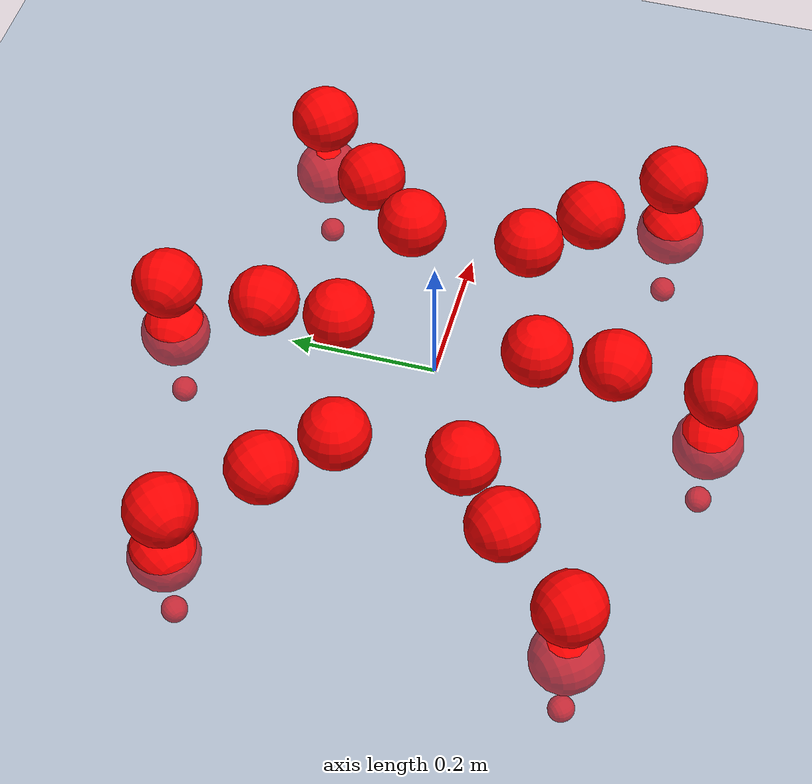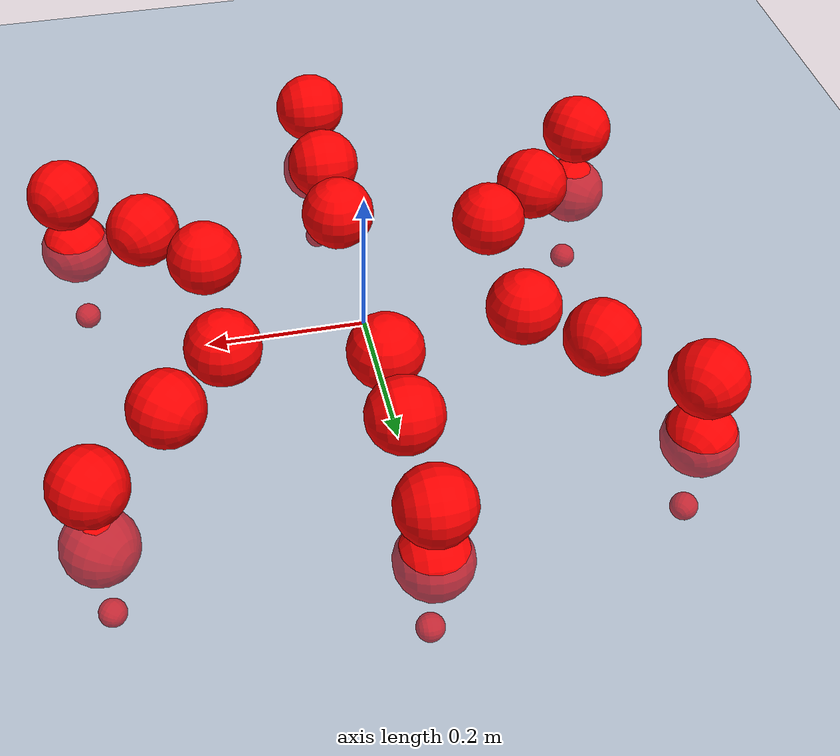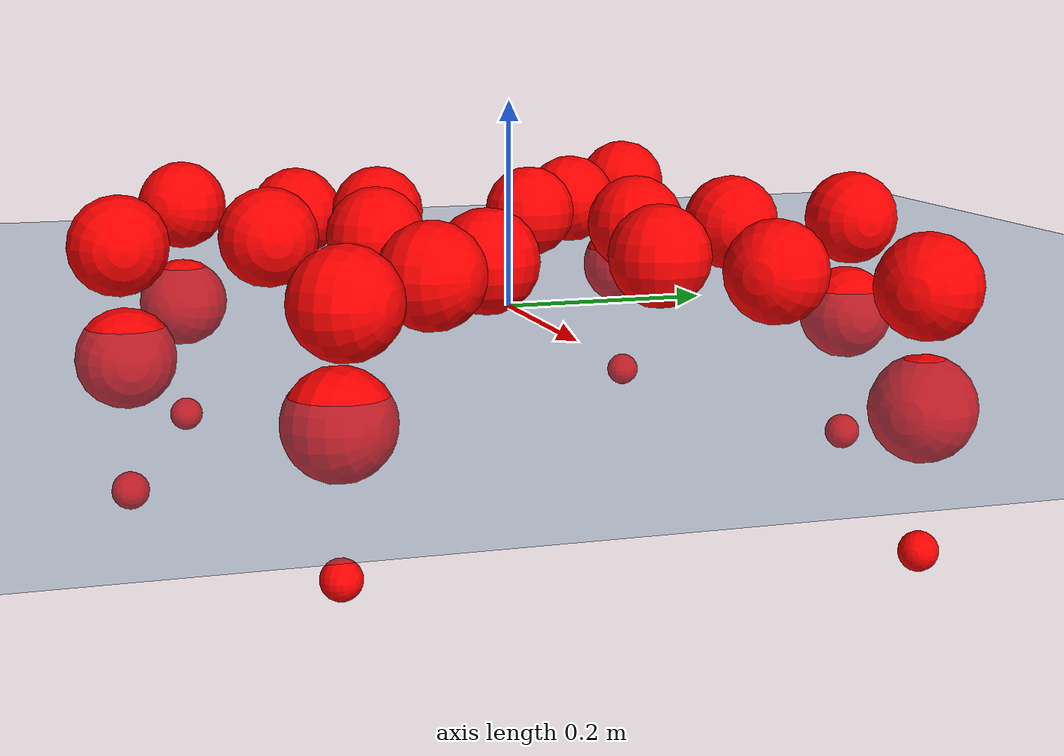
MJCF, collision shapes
<mujoco model="Golem">
  <compiler angle="radian" assetdir="assets" balanceinertia="true" inertiafromgeom="false"/>

  <option timestep="0.005" density="1.2" viscosity="2e-05"/>

  <size nkey="1"/>

  <visual>
    <quality shadowsize="8192"/>
    <map shadowclip="0.5"/>
  </visual>

  <default>
    <default class="/">
      <joint armature="0.01" damping="0.01" frictionloss="0.01"/>
      <geom contype="0" conaffinity="0" group="1" solref="-1000 -80"/>
      <site size="0.01 0.005 0.005" group="5"/>
      <general forcelimited="true" biastype="affine" gainprm="25" biasprm="0 -25 -0.5"/>
      <default class="visual">
        <geom type="mesh" group="2"/>
      </default>
      <default class="collision">
        <geom group="3"/>
      </default>
      <default class="foot">
        <geom size="0.01 0 0" condim="6" group="4" priority="1" solimp="0.015 1 0.01"/>
      </default>
      <default class="reward_collision_sphere">
        <geom group="5" rgba="1 0 0 1"/>
      </default>
    </default>
  </default>

  <asset>
    <texture type="skybox" colorspace="auto" name="//unnamed_texture_0" builtin="gradient" rgb1="0.95 0.95 0.95" rgb2="0.95 0.95 0.95" width="100" height="600"/>
    <texture type="2d" colorspace="auto" name="texplane" builtin="checker" rgb1="0.345 0.575 0.748" rgb2="0.345 0.575 0.748" markrgb="1 1 1" width="512" height="512"/>
    <material name="MatPlane" class="/" texture="texplane" texuniform="true" texrepeat="2 2" specular="0.9"/>
    <mesh name="body" class="/" file="body.stl" scale="0.001 0.001 0.001"/>
    <mesh name="coxa" class="/" file="coxa.stl" scale="0.001 0.001 0.001"/>
    <mesh name="femur" class="/" file="femur.stl" scale="0.001 0.001 0.001"/>
    <mesh name="tibia" class="/" file="tibia.stl" scale="0.001 0.001 0.001"/>
    <mesh name="tarsus" class="/" file="tarsus.stl" scale="0.001 0.001 0.001"/>
  </asset>

  <worldbody>
    <geom name="floor" class="/" size="100 100 0.125" type="plane" group="0" material="MatPlane"/>
    <light name="toplight_shadow" class="/" pos="0 0 5" dir="0.0990148 0.0990148 -0.990148" type="directional" ambient="0.04 0.04 0.04" diffuse="0.55 0.55 0.55" specular="0.12 0.12 0.12"/>
    <light name="toplight_fill" class="/" pos="0 0 5" dir="0.0990148 0.0990148 -0.990148" type="directional" castshadow="false" ambient="0.04 0.04 0.04" diffuse="0.3 0.3 0.3" specular="0.08 0.08 0.08"/>
    <body name="trunk" pos="0.00189411 -0.000749156 0.000269635" quat="0.999999 -0.000202271 0.000808859 0.000825386">
      <inertial pos="-0.0021114 -0.00190634 0.00476379" quat="0.999642 0.00266924 0.00544083 -0.0260474" mass="6.04974" diaginertia="0.0223102 0.034524 0.0157556"/>
      <joint name="//unnamed_joint_0" type="free"/>
      <geom name="//unnamed_geom_1" class="/" pos="0 0 0.0704415" quat="1 0 0 0" type="mesh" rgba="0.9 0.9 0.9 1" mesh="body"/>
      <site name="imu" class="/" pos="0.154518 -0.00683915 0.109746" size="0.011866"/>
      <camera name="track" class="/" pos="0 -2.55708 0" quat="0.707107 0.707107 0 0" mode="trackcom"/>
      <camera name="ego_camera" class="/" pos="0.153479 0 0.110065" quat="-0.5 -0.5 0.5 0.5"/>
      <body name="coxa_RR" pos="-0.210565 -0.109386 0.0736532" quat="0.382511 0.000293449 8.56035e-05 -0.923951">
        <inertial pos="-0.000871313 -0.000722568 -0.00042316" quat="0.999975 0.00164376 0.00682453 -0.00121134" mass="0.342495" diaginertia="0.0224787 0.0347542 0.0166095"/>
        <joint name="coxa_joint_RR" class="/" pos="0 0 0" axis="0.00563253 0.000129047 -0.999984" range="-3.14714 3.03322" armature="0.0117314" damping="0" frictionloss="0.0123116"/>
        <geom name="//unnamed_geom_2" class="/" type="mesh" rgba="0.2 0.2 0.2 1" mesh="coxa"/>
        <geom name="//unnamed_geom_3" class="reward_collision_sphere" size="0.0474639" pos="-0.0354182 0 0"/>
        <body name="femur_RR" pos="0.0701106 -0.00726732 -0.00713243" quat="0.498909 -0.499851 0.500742 0.500496">
          <inertial pos="-0.000985712 -0.00518092 -0.00658334" quat="0.999937 0.00915733 -0.00357149 0.00544333" mass="0.334354" diaginertia="0.0225466 0.0352554 0.015352"/>
          <joint name="femur_joint_RR" class="/" pos="0 0 0" axis="0.0109764 0.00111627 -0.999939" range="-3.09199 3.14567" armature="0.0127899" damping="0.00263882" frictionloss="0.00787344"/>
          <geom name="//unnamed_geom_4" class="/" type="mesh" rgba="0.9 0.9 0.9 1" mesh="femur"/>
          <geom name="//unnamed_geom_5" class="reward_collision_sphere" size="0.0474639"/>
          <body name="tibia_RR" pos="-0.000808652 -0.143843 0.00694401" quat="0.00065783 0.999999 -0.000469672 -0.000767193">
            <inertial pos="-0.000636326 0.00597425 -0.00263158" quat="0.99994 0.00326719 -0.0104804 4.34181e-05" mass="0.332929" diaginertia="0.0232538 0.034158 0.0159666"/>
            <joint name="tibia_joint_RR" class="/" pos="0 0 0" axis="-0.000938179 0.00043592 0.999999" stiffness="0.00686968" range="-3.13771 3.14661" armature="0.0132074" damping="0" frictionloss="0.012667"/>
            <geom name="//unnamed_geom_6" class="/" type="mesh" rgba="0.2 0.2 0.2 1" mesh="tibia"/>
            <geom name="//unnamed_geom_7" class="reward_collision_sphere" size="0.0474639"/>
            <body name="tarsus_RR" pos="0.108128 0.00195119 0.000332233" quat="0.999999 -0.000109437 0.00103285 0.000644468">
              <inertial pos="0.0722896 0.00359223 -0.00133518" quat="0.502429 0.499997 0.499696 0.497867" mass="0.330736" diaginertia="0.0220132 0.0340988 0.0169986"/>
              <joint name="tarsus_joint_RR" class="/" pos="0 0 0" axis="0.00513782 0.00915612 0.999945" range="-3.01025 3.00001" armature="0.0130496" damping="0" frictionloss="0.012445"/>
              <geom name="//unnamed_geom_8" class="/" type="mesh" rgba="0.9 0.9 0.9 1" mesh="tarsus"/>
              <geom name="foot_1" class="foot" size="0.0111388" pos="0.132228 0 0" quat="0 -0.707107 0 0.707107"/>
              <geom name="//unnamed_geom_10" class="reward_collision_sphere" size="0.0474639"/>
              <geom name="//unnamed_geom_11" class="reward_collision_sphere" size="0.017799" pos="0.126915 0 0"/>
              <site name="foot_1" class="foot" pos="0.132228 0 0" quat="0 -0.707107 0 0.707107" size="0.011866"/>
            </body>
          </body>
        </body>
      </body>
      <body name="coxa_RM" pos="0.00510793 -0.170061 0.0750566" quat="0.707126 -7.77803e-05 -8.13076e-05 -0.707088">
        <inertial pos="0.00225273 0.000920904 0.00194068" quat="0.999539 0.0138974 0.00621553 0.0262733" mass="0.328766" diaginertia="0.0224332 0.0340723 0.0152646"/>
        <joint name="coxa_joint_RM" class="/" pos="0 0 0" axis="0.00890986 0.00384927 -0.999953" range="-3.18233 3.18487" armature="0.0116307" damping="0.0243034" frictionloss="0.0104865"/>
        <geom name="//unnamed_geom_12" class="/" type="mesh" rgba="0.2 0.2 0.2 1" mesh="coxa"/>
        <geom name="//unnamed_geom_13" class="reward_collision_sphere" size="0.0474639" pos="-0.0354182 0 0"/>
        <body name="femur_RM" pos="0.0682588 0.000658316 0.00340765" quat="0.49934 -0.498875 0.499674 0.502104">
          <inertial pos="0.00545961 0.000620313 0.00676021" quat="0.999936 -0.00839519 -0.00658476 -0.00368785" mass="0.318959" diaginertia="0.0223602 0.0342497 0.0162562"/>
          <joint name="femur_joint_RM" class="/" pos="0 0 0" axis="0.00144828 0.00032856 -0.999999" range="-3.0998 3.03598" armature="0.0124801" damping="0.0258483" frictionloss="0.0145848"/>
          <geom name="//unnamed_geom_14" class="/" type="mesh" rgba="0.9 0.9 0.9 1" mesh="femur"/>
          <geom name="//unnamed_geom_15" class="reward_collision_sphere" size="0.0474639"/>
          <body name="tibia_RM" pos="0.00265962 -0.138842 -0.00664961" quat="-1.13878e-05 1 -3.28681e-06 -3.49399e-05">
            <inertial pos="0.0019261 0.00204545 -0.00188677" quat="0.999999 0.00132459 3.20391e-05 0.000953655" mass="0.346322" diaginertia="0.0226299 0.0341994 0.016813"/>
            <joint name="tibia_joint_RM" class="/" pos="0 0 0" axis="-0.00290201 0.0260002 0.999658" range="-3.11982 3.22089" armature="0.0104277" damping="0.00837621" frictionloss="0.0120681"/>
            <geom name="//unnamed_geom_16" class="/" type="mesh" rgba="0.2 0.2 0.2 1" mesh="tibia"/>
            <geom name="//unnamed_geom_17" class="reward_collision_sphere" size="0.0474639"/>
            <body name="tarsus_RM" pos="0.106174 -0.00449134 0.00519463" quat="0.999999 -0.00101533 -0.000345214 -0.000637404">
              <inertial pos="0.0688355 0.000822874 -0.00182023" quat="0.498095 0.489563 0.505235 0.506919" mass="0.338144" diaginertia="0.0229377 0.0348902 0.0177177"/>
              <joint name="tarsus_joint_RM" class="/" pos="0 0 0" axis="-0.00326873 0.00375155 0.999988" stiffness="0.00196544" range="-3.05391 3.25487" armature="0.0123306" damping="0" frictionloss="0.0106854"/>
              <geom name="//unnamed_geom_18" class="/" type="mesh" rgba="0.9 0.9 0.9 1" mesh="tarsus"/>
              <geom name="foot_2" class="foot" size="0.0124573" pos="0.132228 0 0" quat="0 -0.707107 0 0.707107"/>
              <geom name="//unnamed_geom_20" class="reward_collision_sphere" size="0.0474639"/>
              <geom name="//unnamed_geom_21" class="reward_collision_sphere" size="0.017799" pos="0.126915 0 0"/>
              <site name="foot_2" class="foot" pos="0.132228 0 0" quat="0 -0.707107 0 0.707107" size="0.011866"/>
            </body>
          </body>
        </body>
      </body>
      <body name="coxa_RF" pos="0.213406 -0.105856 0.0746891" quat="0.923964 -5.97122e-05 0.000268319 -0.382478">
        <inertial pos="0.00122034 0.00751872 0.00217927" quat="0.999964 -0.00396459 -0.00725023 -0.00202967" mass="0.323097" diaginertia="0.0223036 0.0347842 0.0164361"/>
        <joint name="coxa_joint_RF" class="/" pos="0 0 0" axis="0.00128446 -0.00671773 -0.999977" range="-3.13458 3.09516" armature="0.0105995" damping="0.0195445" frictionloss="0.0119082"/>
        <geom name="//unnamed_geom_22" class="/" type="mesh" rgba="0.2 0.2 0.2 1" mesh="coxa"/>
        <geom name="//unnamed_geom_23" class="reward_collision_sphere" size="0.0474639" pos="-0.0354182 0 0"/>
        <body name="femur_RF" pos="0.0643082 0.000323671 0.000688032" quat="0.500309 -0.499473 0.499665 0.500551">
          <inertial pos="0.00266609 0.000111586 -0.00318748" quat="0.999958 -0.002246 -0.00836548 -0.00300529" mass="0.342815" diaginertia="0.0227203 0.0367418 0.0157669"/>
          <joint name="femur_joint_RF" class="/" pos="0 0 0" axis="-0.00317515 -0.000922981 -0.999995" range="-3.24363 3.17998" armature="0.0115337" damping="0.0106528" frictionloss="0.0133813"/>
          <geom name="//unnamed_geom_24" class="/" type="mesh" rgba="0.9 0.9 0.9 1" mesh="femur"/>
          <geom name="//unnamed_geom_25" class="reward_collision_sphere" size="0.0474639"/>
          <body name="tibia_RF" pos="0.00237708 -0.137746 0.000235805" quat="1.56896e-05 1 -0.000229394 -3.76714e-05">
            <inertial pos="-0.00193651 0.000168215 -0.000109619" quat="0.999536 0.0154755 0.0262241 -0.000359689" mass="0.31376" diaginertia="0.0235367 0.0341698 0.0159539"/>
            <joint name="tibia_joint_RF" class="/" pos="0 0 0" axis="-0.0110401 0.0102486 0.999887" range="-3.14192 3.13744" armature="0.0132407" damping="0" frictionloss="0.010671"/>
            <geom name="//unnamed_geom_26" class="/" type="mesh" rgba="0.2 0.2 0.2 1" mesh="tibia"/>
            <geom name="//unnamed_geom_27" class="reward_collision_sphere" size="0.0474639"/>
            <body name="tarsus_RF" pos="0.097247 -0.000305304 0.00756805" quat="1 0.000318467 -2.48406e-05 0.000102764">
              <inertial pos="0.0717395 0.00417737 0.00136892" quat="0.500247 0.499581 0.50531 0.494806" mass="0.357874" diaginertia="0.0227107 0.0355489 0.0160674"/>
              <joint name="tarsus_joint_RF" class="/" pos="0 0 0" axis="0.00816325 -0.0157949 0.999842" range="-3.08377 3.13482" armature="0.0121484" damping="0" frictionloss="0.0108665"/>
              <geom name="//unnamed_geom_28" class="/" type="mesh" rgba="0.9 0.9 0.9 1" mesh="tarsus"/>
              <geom name="foot_3" class="foot" size="0.0127675" pos="0.132228 0 0" quat="0 -0.707107 0 0.707107"/>
              <geom name="//unnamed_geom_30" class="reward_collision_sphere" size="0.0474639"/>
              <geom name="//unnamed_geom_31" class="reward_collision_sphere" size="0.017799" pos="0.126915 0 0"/>
              <site name="foot_3" class="foot" pos="0.132228 0 0" quat="0 -0.707107 0 0.707107" size="0.011866"/>
            </body>
          </body>
        </body>
      </body>
      <body name="coxa_LR" pos="-0.210984 0.107949 0.0681087" quat="0.382667 -5.89694e-06 -1.8122e-05 0.923886">
        <inertial pos="-0.00176383 -0.00196901 -0.00391551" quat="0.999942 0.00834631 0.00620108 0.00270191" mass="0.331794" diaginertia="0.0230904 0.0338822 0.0175628"/>
        <joint name="coxa_joint_LR" class="/" pos="0 0 0" axis="0.00202002 -0.0164097 -0.999863" stiffness="0.0120578" range="-3.1403 3.16546" armature="0.011391" damping="0.0409234" frictionloss="0.0151553"/>
        <geom name="//unnamed_geom_32" class="/" type="mesh" rgba="0.2 0.2 0.2 1" mesh="coxa"/>
        <geom name="//unnamed_geom_33" class="reward_collision_sphere" size="0.0474639" pos="-0.0354182 0 0"/>
        <body name="femur_LR" pos="0.0696945 0.00207029 0.00266028" quat="0.500307 -0.500649 0.500049 0.498993">
          <inertial pos="-0.0046319 -0.000609497 -0.00241937" quat="0.999982 0.000426192 -0.00208085 -0.00562077" mass="0.361898" diaginertia="0.0222782 0.0336508 0.0156056"/>
          <joint name="femur_joint_LR" class="/" pos="0 0 0" axis="0.00811639 -0.00872732 0.999929" stiffness="0.00414285" range="-3.00883 3.24158" armature="0.01504" damping="0.0200113" frictionloss="0.0122093"/>
          <geom name="//unnamed_geom_34" class="/" type="mesh" rgba="0.9 0.9 0.9 1" mesh="femur"/>
          <geom name="//unnamed_geom_35" class="reward_collision_sphere" size="0.0474639"/>
          <body name="tibia_LR" pos="-0.0050786 -0.137537 -0.0010002" quat="-4.07431e-05 1 0.000101249 -0.00013161">
            <inertial pos="-0.000381353 0.00288386 0.00136594" quat="0.999994 0.00156285 0.00219942 0.0020154" mass="0.317021" diaginertia="0.0232314 0.0321095 0.0162214"/>
            <joint name="tibia_joint_LR" class="/" pos="0 0 0" axis="-0.0128708 -0.0171884 -0.999769" stiffness="0.00456543" range="-3.08904 3.2161" armature="0.0112038" damping="0" frictionloss="0.011877"/>
            <geom name="//unnamed_geom_36" class="/" type="mesh" rgba="0.2 0.2 0.2 1" mesh="tibia"/>
            <geom name="//unnamed_geom_37" class="reward_collision_sphere" size="0.0474639"/>
            <body name="tarsus_LR" pos="0.0972716 0.00451839 0.00169755" quat="0.999997 0.00108477 0.00209467 -0.00116888">
              <inertial pos="0.0746378 0.00348452 -0.00198911" quat="0.499989 0.499966 0.500013 0.500032" mass="0.331947" diaginertia="0.0223034 0.0352061 0.0155661"/>
              <joint name="tarsus_joint_LR" class="/" pos="0 0 0" axis="0.000183476 -0.00029639 -1" stiffness="0.00891605" range="-3.16234 3.17315" armature="0.012245" damping="0.0367293" frictionloss="0.00916878"/>
              <geom name="//unnamed_geom_38" class="/" type="mesh" rgba="0.9 0.9 0.9 1" mesh="tarsus"/>
              <geom name="foot_4" class="foot" size="0.0128117" pos="0.132228 0 0" quat="0.707107 0 -0.707107 0"/>
              <geom name="//unnamed_geom_40" class="reward_collision_sphere" size="0.0474639"/>
              <geom name="//unnamed_geom_41" class="reward_collision_sphere" size="0.017799" pos="0.126915 0 0"/>
              <site name="foot_4" class="foot" pos="0.132228 0 0" quat="0.707107 0 -0.707107 0" size="0.011866"/>
            </body>
          </body>
        </body>
      </body>
      <body name="coxa_LM" pos="-0.00130224 0.167849 0.0762851" quat="0.707096 -6.90486e-06 -3.52297e-05 0.707118">
        <inertial pos="-0.00426776 -0.000360261 0.00163917" quat="0.999982 0.00428072 -0.00362444 -0.00229042" mass="0.352702" diaginertia="0.0220135 0.0359987 0.0165872"/>
        <joint name="coxa_joint_LM" class="/" pos="0 0 0" axis="-0.000170149 -0.0116489 -0.999932" range="-3.0929 3.14124" armature="0.0123706" damping="0.00821787" frictionloss="0.0125309"/>
        <geom name="//unnamed_geom_42" class="/" type="mesh" rgba="0.2 0.2 0.2 1" mesh="coxa"/>
        <geom name="//unnamed_geom_43" class="reward_collision_sphere" size="0.0474639" pos="-0.0354182 0 0"/>
        <body name="femur_LM" pos="0.0674884 -6.80208e-05 -0.0031366" quat="0.5 -0.5 0.5 0.5">
          <inertial pos="-0.00155581 -0.00106599 0.00044026" quat="0.999972 0.0065133 -0.00150211 0.00345396" mass="0.320851" diaginertia="0.024369 0.032463 0.0149455"/>
          <joint name="femur_joint_LM" class="/" pos="0 0 0" axis="0.0282254 0.00537466 0.999587" stiffness="0.0125509" range="-3.24721 3.13422" armature="0.0103637" damping="0.0448989" frictionloss="0.0119935"/>
          <geom name="//unnamed_geom_44" class="/" type="mesh" rgba="0.9 0.9 0.9 1" mesh="femur"/>
          <geom name="//unnamed_geom_45" class="reward_collision_sphere" size="0.0474639"/>
          <body name="tibia_LM" pos="0.000710384 -0.135508 0.00322907" quat="2.66172e-05 1 -0.000574917 0.00013628">
            <inertial pos="0.00539538 0.00042295 -3.10204e-05" quat="0.999973 0.0017163 0.00690964 -0.00206501" mass="0.351549" diaginertia="0.0236811 0.0355533 0.0163566"/>
            <joint name="tibia_joint_LM" class="/" pos="0 0 0" axis="3.53343e-05 0.000731428 -1" range="-3.10283 3.13395" armature="0.0131272" damping="0" frictionloss="0.016215"/>
            <geom name="//unnamed_geom_46" class="/" type="mesh" rgba="0.2 0.2 0.2 1" mesh="tibia"/>
            <geom name="//unnamed_geom_47" class="reward_collision_sphere" size="0.0474639"/>
            <body name="tarsus_LM" pos="0.0984027 -0.0027147 -0.00164999" quat="1 0.000160956 -0.000759504 -0.000335527">
              <inertial pos="0.0740487 0.00109002 0.00139668" quat="0.493939 0.509875 0.487124 0.508687" mass="0.339016" diaginertia="0.023761 0.0341317 0.0166607"/>
              <joint name="tarsus_joint_LM" class="/" pos="0 0 0" axis="0.00849522 -0.0116089 -0.999897" range="-3.19506 3.14175" armature="0.0127556" damping="0" frictionloss="0.013143"/>
              <geom name="//unnamed_geom_48" class="/" type="mesh" rgba="0.9 0.9 0.9 1" mesh="tarsus"/>
              <geom name="foot_5" class="foot" size="0.00858572" pos="0.132228 0 0" quat="0.707107 0 -0.707107 0"/>
              <geom name="//unnamed_geom_50" class="reward_collision_sphere" size="0.0474639"/>
              <geom name="//unnamed_geom_51" class="reward_collision_sphere" size="0.017799" pos="0.126915 0 0"/>
              <site name="foot_5" class="foot" pos="0.132228 0 0" quat="0.707107 0 -0.707107 0" size="0.011866"/>
            </body>
          </body>
        </body>
      </body>
      <body name="coxa_LF" pos="0.211051 0.108293 0.0717572" quat="0.923766 -0.000215032 -9.3244e-05 0.382956">
        <inertial pos="0.000260056 0.00646006 0.00100946" quat="0.999743 -0.00210513 0.0225295 0.00108517" mass="0.311964" diaginertia="0.0206236 0.0303561 0.0143319"/>
        <joint name="coxa_joint_LF" class="/" pos="0 0 0" axis="-0.00523399 0.00399846 -0.999978" stiffness="0.0117826" range="-3.18902 3.12807" armature="0.0117328" damping="0" frictionloss="0.0140207"/>
        <geom name="//unnamed_geom_52" class="/" type="mesh" rgba="0.2 0.2 0.2 1" mesh="coxa"/>
        <geom name="//unnamed_geom_53" class="reward_collision_sphere" size="0.0474639" pos="-0.0354182 0 0"/>
        <body name="femur_LF" pos="0.0749877 0.00207571 -0.0067943" quat="0.500367 -0.500073 0.49935 0.500209">
          <inertial pos="-0.000439842 -0.00157246 0.00435216" quat="0.999947 -0.00686589 -0.00717965 -0.00263106" mass="0.327252" diaginertia="0.023028 0.0340794 0.0165261"/>
          <joint name="femur_joint_LF" class="/" pos="0 0 0" axis="4.84728e-05 -0.00976281 0.999952" stiffness="0.0384629" range="-3.18177 3.14079" armature="0.0109543" damping="0.0246893" frictionloss="0.0117955"/>
          <geom name="//unnamed_geom_54" class="/" type="mesh" rgba="0.9 0.9 0.9 1" mesh="femur"/>
          <geom name="//unnamed_geom_55" class="reward_collision_sphere" size="0.0474639"/>
          <body name="tibia_LF" pos="0.00310044 -0.137013 0.000170034" quat="-0.000451066 1 -0.000363295 0.000104827">
            <inertial pos="-0.00534911 -0.00535403 -0.0068873" quat="0.999977 0.00483495 -0.00374621 -0.00308752" mass="0.339666" diaginertia="0.0237878 0.0340057 0.0149931"/>
            <joint name="tibia_joint_LF" class="/" pos="0 0 0" axis="-0.00268714 0.00164994 -0.999995" range="-3.17823 3.24557" armature="0.0105416" damping="0.0143752" frictionloss="0.0127355"/>
            <geom name="//unnamed_geom_56" class="/" type="mesh" rgba="0.2 0.2 0.2 1" mesh="tibia"/>
            <geom name="//unnamed_geom_57" class="reward_collision_sphere" size="0.0474639"/>
            <body name="tarsus_LF" pos="0.106025 -0.0016782 0.000808477" quat="1 0.000131673 -0.000191693 0.000163917">
              <inertial pos="0.0726274 -0.00120514 -0.00529227" quat="0.504091 0.492503 0.512581 0.490504" mass="0.341445" diaginertia="0.021929 0.034373 0.0149858"/>
              <joint name="tarsus_joint_LF" class="/" pos="0 0 0" axis="0.00179746 0.00213856 -0.999996" range="-3.06314 3.2526" armature="0.0114637" damping="0.0261018" frictionloss="0.0114576"/>
              <geom name="//unnamed_geom_58" class="/" type="mesh" rgba="0.9 0.9 0.9 1" mesh="tarsus"/>
              <geom name="foot_6" class="foot" size="0.0111169" pos="0.132228 0 0" quat="0.707107 0 -0.707107 0"/>
              <geom name="//unnamed_geom_60" class="reward_collision_sphere" size="0.0474639"/>
              <geom name="//unnamed_geom_61" class="reward_collision_sphere" size="0.017799" pos="0.126915 0 0"/>
              <site name="foot_6" class="foot" pos="0.132228 0 0" quat="0.707107 0 -0.707107 0" size="0.011866"/>
            </body>
          </body>
        </body>
      </body>
    </body>
  </worldbody>

  <contact>
    <pair class="/" geom1="floor" geom2="foot_1" name="//unnamed_contact_0"/>
    <pair class="/" geom1="floor" geom2="foot_2" name="//unnamed_contact_1"/>
    <pair class="/" geom1="floor" geom2="foot_3" name="//unnamed_contact_2"/>
    <pair class="/" geom1="floor" geom2="foot_4" name="//unnamed_contact_3"/>
    <pair class="/" geom1="floor" geom2="foot_5" name="//unnamed_contact_4"/>
    <pair class="/" geom1="floor" geom2="foot_6" name="//unnamed_contact_5"/>
  </contact>

  <actuator>
    <general name="coxa_joint_RR" class="/" joint="coxa_joint_RR" forcerange="-7.96885 7.96885" gainprm="24.515" biasprm="0 -24.515 -0.580733"/>
    <general name="femur_joint_RR" class="/" joint="femur_joint_RR" forcerange="-8.74961 8.74961" gainprm="24.515" biasprm="0 -24.515 -0.580733"/>
    <general name="tibia_joint_RR" class="/" joint="tibia_joint_RR" forcerange="-8.71212 8.71212" gainprm="24.515" biasprm="0 -24.515 -0.580733"/>
    <general name="tarsus_joint_RR" class="/" joint="tarsus_joint_RR" forcerange="-9.33732 9.33732" gainprm="24.515" biasprm="0 -24.515 -0.580733"/>
    <general name="coxa_joint_RM" class="/" joint="coxa_joint_RM" forcerange="-8.0039 8.0039" gainprm="24.515" biasprm="0 -24.515 -0.580733"/>
    <general name="femur_joint_RM" class="/" joint="femur_joint_RM" forcerange="-8.75768 8.75768" gainprm="24.515" biasprm="0 -24.515 -0.580733"/>
    <general name="tibia_joint_RM" class="/" joint="tibia_joint_RM" forcerange="-8.87852 8.87852" gainprm="24.515" biasprm="0 -24.515 -0.580733"/>
    <general name="tarsus_joint_RM" class="/" joint="tarsus_joint_RM" forcerange="-9.55334 9.55334" gainprm="24.515" biasprm="0 -24.515 -0.580733"/>
    <general name="coxa_joint_RF" class="/" joint="coxa_joint_RF" forcerange="-8.0421 8.0421" gainprm="24.515" biasprm="0 -24.515 -0.580733"/>
    <general name="femur_joint_RF" class="/" joint="femur_joint_RF" forcerange="-8.56355 8.56355" gainprm="24.515" biasprm="0 -24.515 -0.580733"/>
    <general name="tibia_joint_RF" class="/" joint="tibia_joint_RF" forcerange="-8.59241 8.59241" gainprm="24.515" biasprm="0 -24.515 -0.580733"/>
    <general name="tarsus_joint_RF" class="/" joint="tarsus_joint_RF" forcerange="-8.01595 8.01595" gainprm="24.515" biasprm="0 -24.515 -0.580733"/>
    <general name="coxa_joint_LR" class="/" joint="coxa_joint_LR" forcerange="-8.25606 8.25606" gainprm="24.515" biasprm="0 -24.515 -0.580733"/>
    <general name="femur_joint_LR" class="/" joint="femur_joint_LR" forcerange="-9.95262 9.95262" gainprm="24.515" biasprm="0 -24.515 -0.580733"/>
    <general name="tibia_joint_LR" class="/" joint="tibia_joint_LR" forcerange="-9.43106 9.43106" gainprm="24.515" biasprm="0 -24.515 -0.580733"/>
    <general name="tarsus_joint_LR" class="/" joint="tarsus_joint_LR" forcerange="-8.72094 8.72094" gainprm="24.515" biasprm="0 -24.515 -0.580733"/>
    <general name="coxa_joint_LM" class="/" joint="coxa_joint_LM" forcerange="-8.48465 8.48465" gainprm="24.515" biasprm="0 -24.515 -0.580733"/>
    <general name="femur_joint_LM" class="/" joint="femur_joint_LM" forcerange="-8.64522 8.64522" gainprm="24.515" biasprm="0 -24.515 -0.580733"/>
    <general name="tibia_joint_LM" class="/" joint="tibia_joint_LM" forcerange="-8.68094 8.68094" gainprm="24.515" biasprm="0 -24.515 -0.580733"/>
    <general name="tarsus_joint_LM" class="/" joint="tarsus_joint_LM" forcerange="-8.37615 8.37615" gainprm="24.515" biasprm="0 -24.515 -0.580733"/>
    <general name="coxa_joint_LF" class="/" joint="coxa_joint_LF" forcerange="-8.1432 8.1432" gainprm="24.515" biasprm="0 -24.515 -0.580733"/>
    <general name="femur_joint_LF" class="/" joint="femur_joint_LF" forcerange="-7.88055 7.88055" gainprm="24.515" biasprm="0 -24.515 -0.580733"/>
    <general name="tibia_joint_LF" class="/" joint="tibia_joint_LF" forcerange="-8.59099 8.59099" gainprm="24.515" biasprm="0 -24.515 -0.580733"/>
    <general name="tarsus_joint_LF" class="/" joint="tarsus_joint_LF" forcerange="-11.0004 11.0004" gainprm="24.515" biasprm="0 -24.515 -0.580733"/>
  </actuator>

  <sensor>
    <gyro site="imu" name="imu_angular_velocity"/>
    <velocimeter site="imu" name="imu_linear_velocity"/>
    <framelinvel objtype="site" objname="foot_1" name="foot_1_global_linear_velocity"/>
    <framelinvel objtype="site" objname="foot_2" name="foot_2_global_linear_velocity"/>
    <framelinvel objtype="site" objname="foot_3" name="foot_3_global_linear_velocity"/>
    <framelinvel objtype="site" objname="foot_4" name="foot_4_global_linear_velocity"/>
    <framelinvel objtype="site" objname="foot_5" name="foot_5_global_linear_velocity"/>
    <framelinvel objtype="site" objname="foot_6" name="foot_6_global_linear_velocity"/>
  </sensor>

  <keyframe>
    <key name="home" qpos="0 0 0.1457 1 0 0 0 0 0 0 0 0 0 0 0 0 0 0 0 0 0 0 0 0 0 0 0 0 0 0 0"/>
  </keyframe>
</mujoco>
